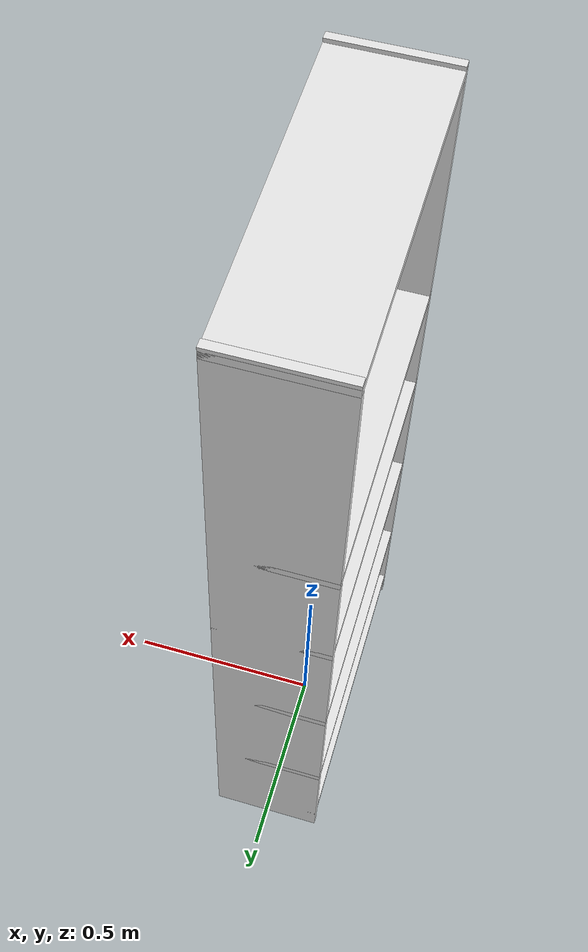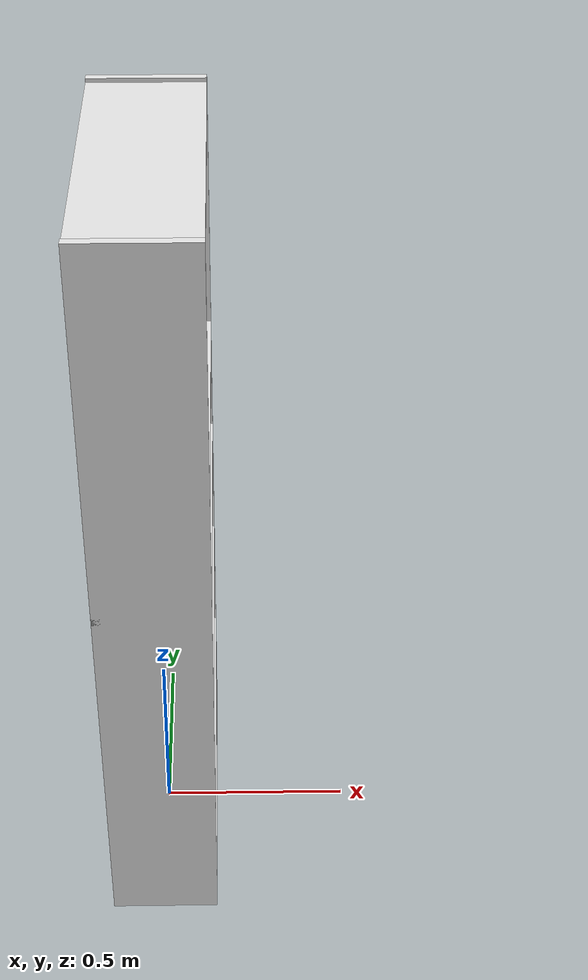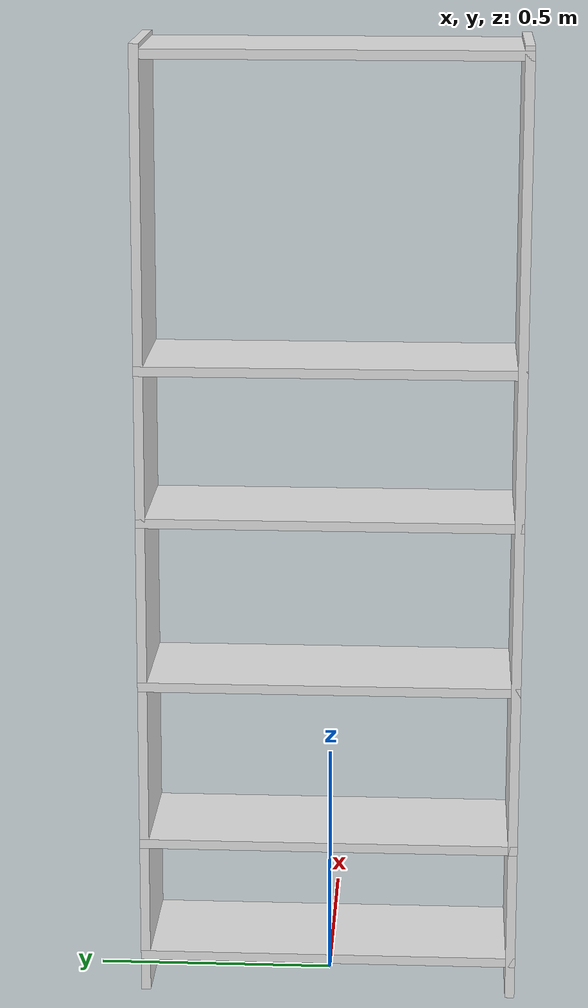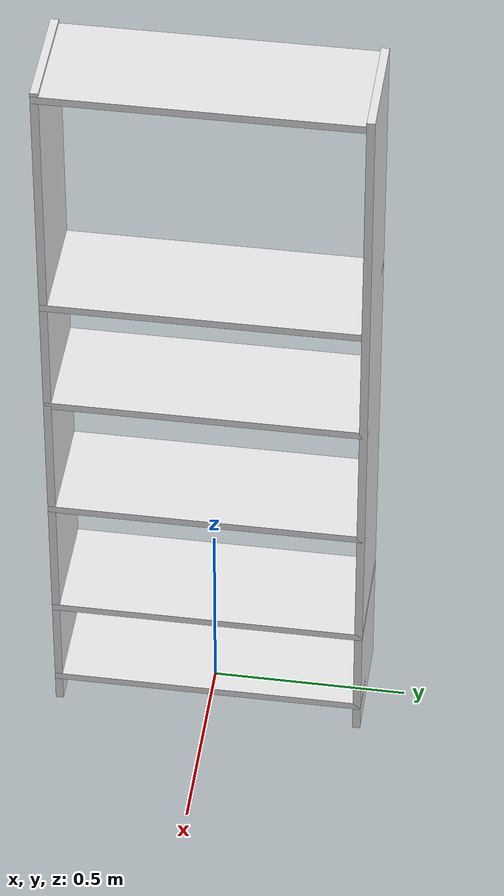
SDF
<?xml version="1.0"?>
<sdf version="1.6">
  <world name="rgo2015/cabinet">
    <light name="sun" type="directional">
      <direction>0.5 0.1 -0.9</direction>
      <pose>0 0 10 0 0 0</pose>
      <specular>0.2 0.2 0.2 1</specular>
      <cast_shadows>true</cast_shadows>
      <diffuse>0.8 0.8 0.8 1</diffuse>
      <attenuation>
        <range>1000</range>
        <quadratic>0.001</quadratic>
        <constant>0.9</constant>
        <linear>0.01</linear>
      </attenuation>
    </light>
    <include>
      <pose>0 0 0 0 0 0</pose>
      <name>cabinet_frame</name>
      <uri>model://rgo2015/cabinet/cabinet_frame</uri>
    </include>
    <include>
      <pose>0 0 0.08 0 0 0</pose>
      <name>shelf1</name>
      <uri>model://rgo2015/cabinet/shelf</uri>
    </include>
    <include>
      <pose>0 0 0.335 0 0 0</pose>
      <name>shelf2</name>
      <uri>model://rgo2015/cabinet/shelf</uri>
    </include>
    <include>
      <pose>0 0 0.685 0 0 0</pose>
      <name>shelf3</name>
      <uri>model://rgo2015/cabinet/shelf</uri>
    </include>
    <include>
      <pose>0 0 1.04 0 0 0</pose>
      <name>shelf4</name>
      <uri>model://rgo2015/cabinet/shelf</uri>
    </include>
    <include>
      <pose>0 0 1.36 0 0 0</pose>
      <name>shelf5</name>
      <uri>model://rgo2015/cabinet/shelf</uri>
    </include>
    <include>
      <pose>0 0 2.0 0 0 0</pose>
      <name>shelf6</name>
      <uri>model://rgo2015/cabinet/shelf</uri>
    </include>
    <physics type="ode">
      <real_time_update_rate>333.0</real_time_update_rate>
      <max_step_size>0.003</max_step_size>
      <ode>
        <constraints>
          <cfm>0.0001</cfm>
        </constraints>
        <solver>
          <type>quick</type>
          <iters>100</iters>
        </solver>
      </ode>
    </physics>
  </world>
</sdf>

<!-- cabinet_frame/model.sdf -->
<sdf version="1.6">
  <model name="rgo2015/cabinet/cabinet_frame">
    <link name="1_link">
      <collision name="1_col">
        <geometry>
          <box>
            <size>0.28 0.02 2.02</size>
          </box>
        </geometry>
      </collision>
      <visual name="1_vis">
        <geometry>
          <box>
            <size>0.28 0.02 2.02</size>
          </box>
        </geometry>
        <material>
          <ambient>0.9 0.9 0.9 1</ambient>
        </material>
      </visual>
      <pose>0.0 -0.39 1.01 0 0 0</pose>
    </link>
    <link name="2_link">
      <collision name="2_col">
        <geometry>
          <box>
            <size>0.28 0.02 2.02</size>
          </box>
        </geometry>
      </collision>
      <visual name="2_vis">
        <geometry>
          <box>
            <size>0.28 0.02 2.02</size>
          </box>
        </geometry>
        <material>
          <ambient>0.9 0.9 0.9 1</ambient>
        </material>
      </visual>
      <pose>0.0 0.39 1.01 0 0 0</pose>
    </link>
    <static>true</static>
  </model>
</sdf>

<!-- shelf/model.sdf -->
<sdf version="1.6">
  <model name="rgo2015/cabinet/shelf">
    <link name="1_link">
      <collision name="1_col">
        <geometry>
          <box>
            <size>0.28 0.8 0.02</size>
          </box>
        </geometry>
      </collision>
      <visual name="1_vis">
        <geometry>
          <box>
            <size>0.28 0.8 0.02</size>
          </box>
        </geometry>
        <material>
          <ambient>0.9 0.9 0.9 1</ambient>
        </material>
      </visual>
      <pose>0.0 0.0 0.0 0 0 0</pose>
    </link>
    <link name="in_front_of">
      <virtual_volume name="in_front_of_vv">
        <geometry>
          <box>
            <size>0.1 0.8 1</size>
          </box>
        </geometry>
        <pose>0.84 0.0 0.5 0 0 0</pose>
      </virtual_volume>
    </link>
    <static>true</static>
  </model>
</sdf>
